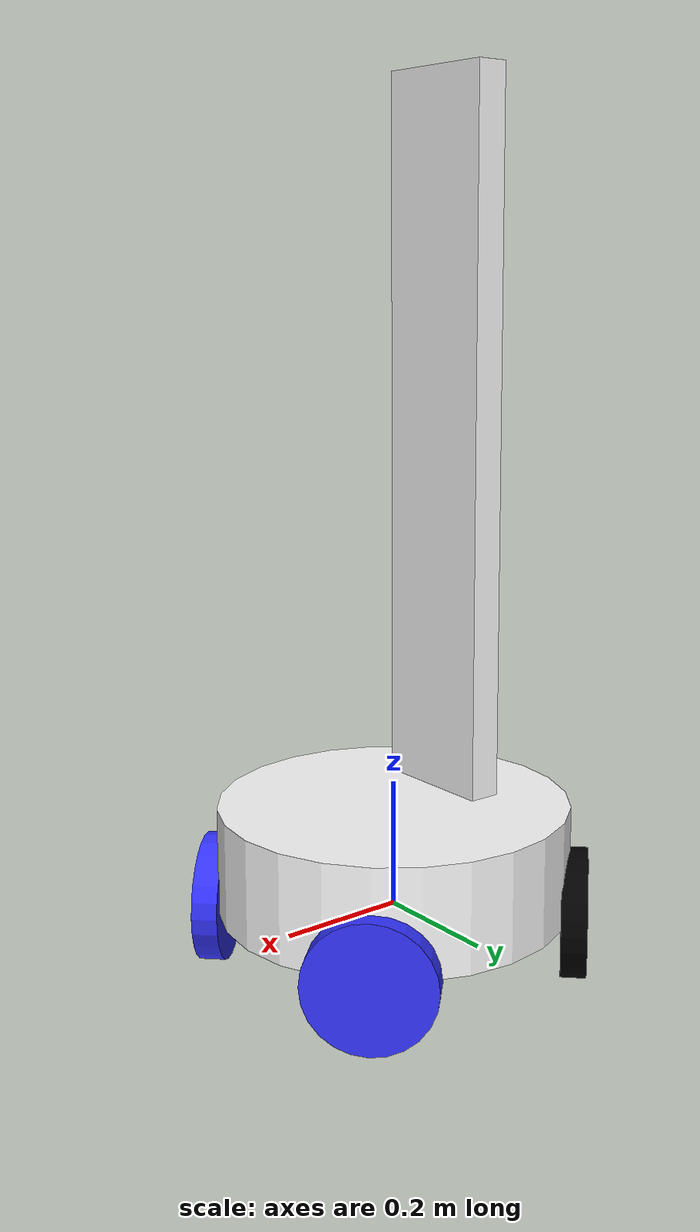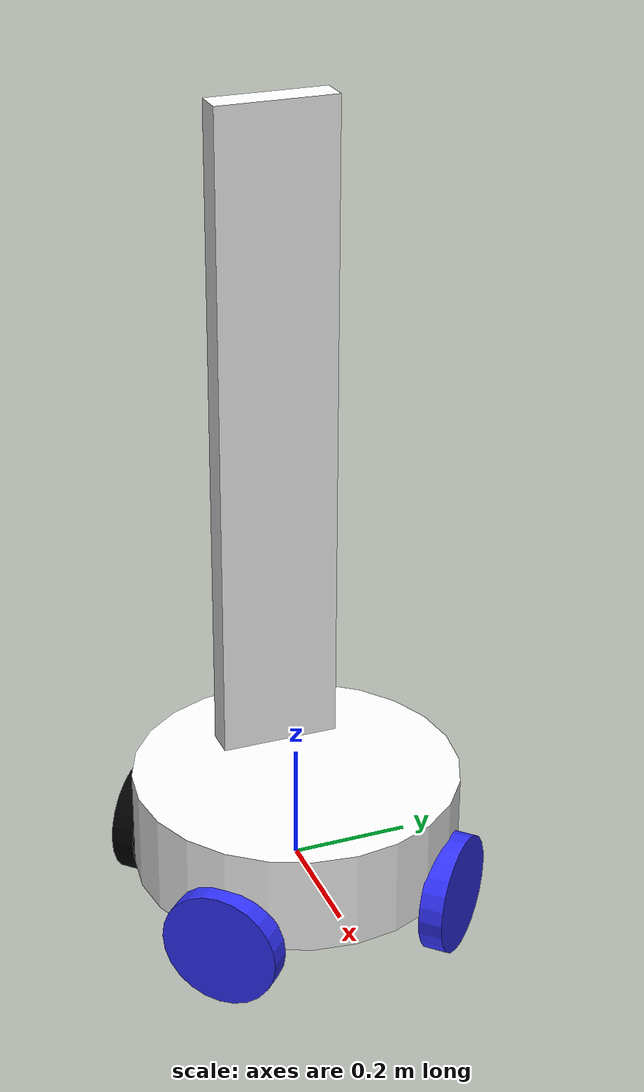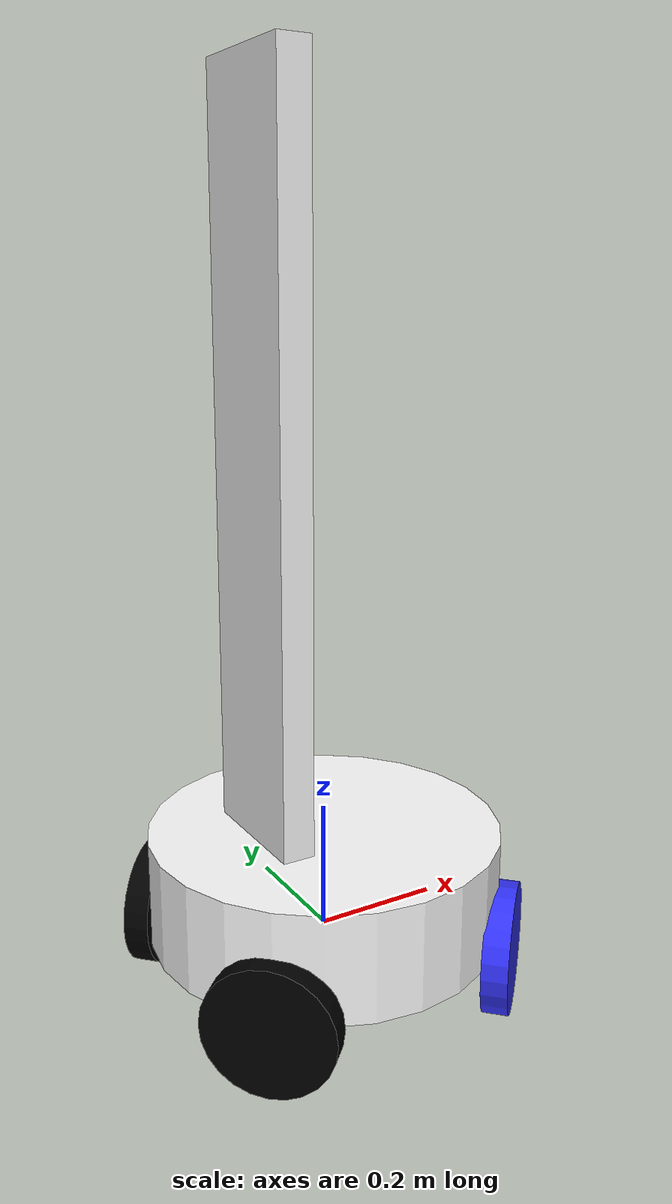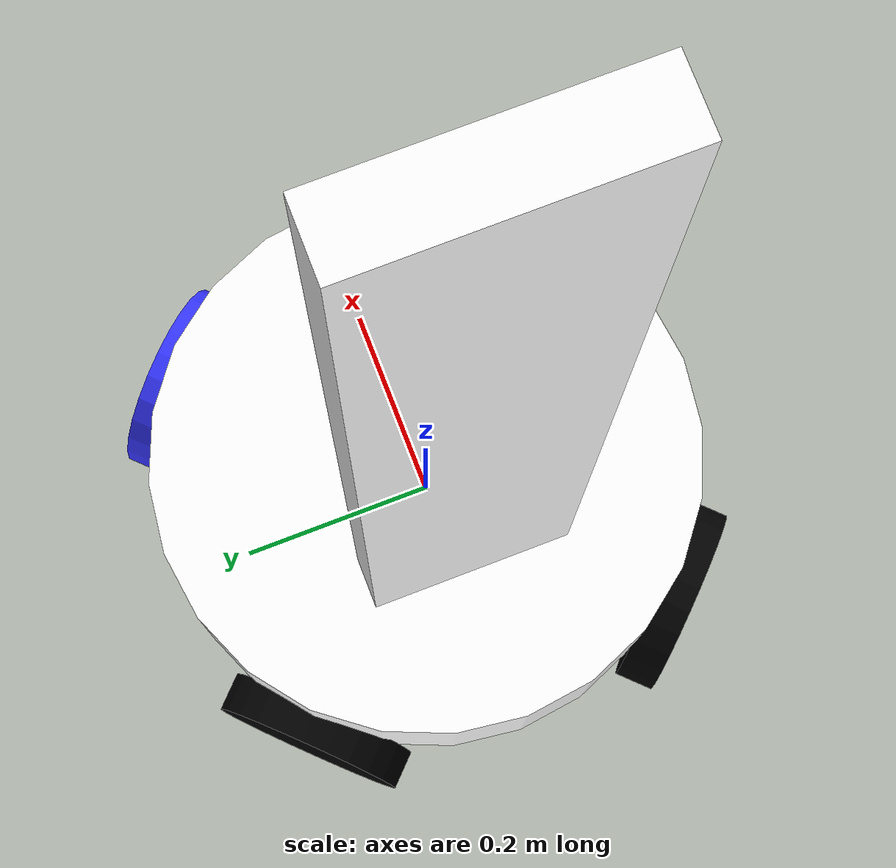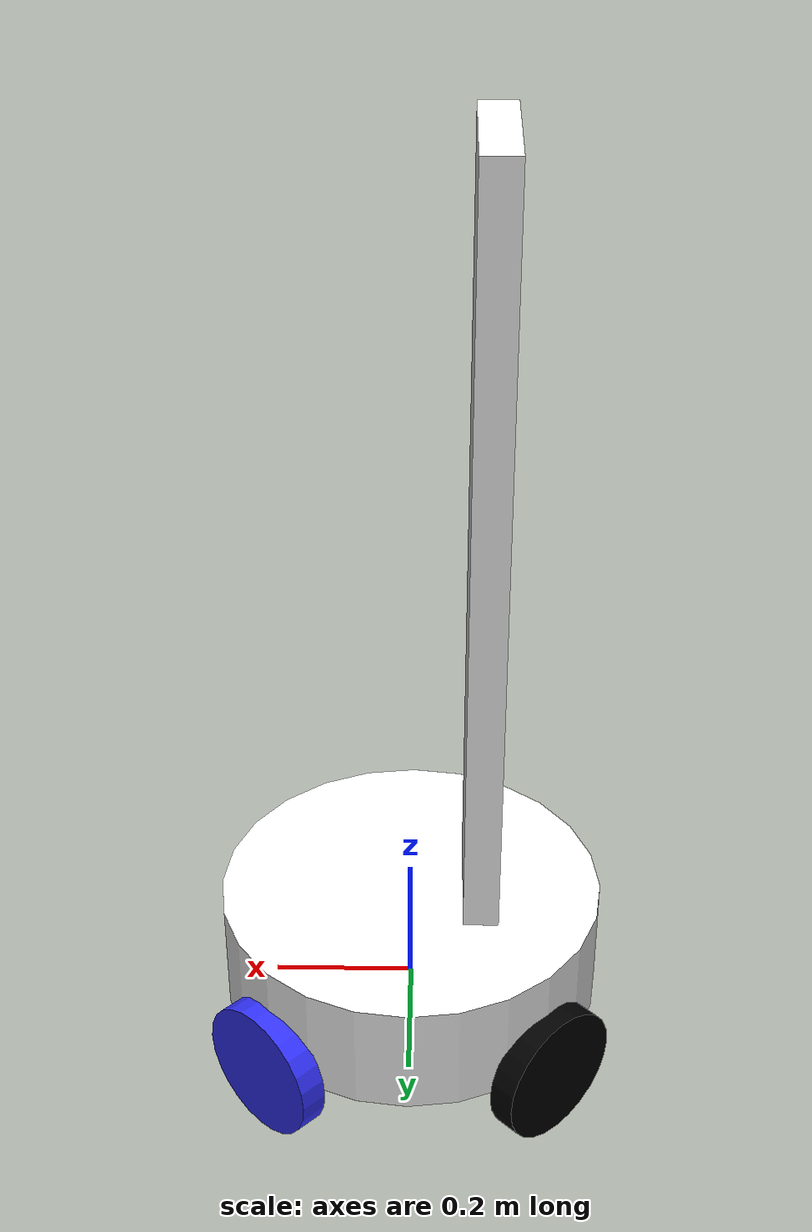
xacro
<?xml version="1.0"?>
<robot xmlns:xacro="http://www.ros.org/wiki/xacro" >

    <xacro:include filename="inertial_macros.xacro"/>
    <xacro:include filename="gazebo_control.xacro" />

    <material name="white">
        <color rgba="1 1 1 1"/>
    </material>
    <material name="blue">
        <color rgba="0.2 0.2 1 1"/>
    </material>
    <material name="black">
        <color rgba="0 0 0 1"/>
    </material>
    <material name="red">
        <color rgba="1 0 0 1"/>
    </material>

    <!--BASE LINK-->
    <link name="base_link">
    </link>

    <!--BASE FOOTPRINT LINK-->
    <joint name="base_footprint_joint" type="fixed">
        <parent link="base_link"/>
        <child link="base_footprint"/>
        <origin xyz="0 0 0" rpy="0 0 0"/>
    </joint>

    <link name="base_footprint">
    </link>

    <!--CHASSI-->
    <joint name="chassi_joint" type="fixed">
        <parent link="base_link"/>
        <child link="chassi_link"/>
        <origin xyz="0 0 0"/> <!--VIRADO PARA X-->
    </joint>

    <link name="chassi_link">
        <visual>
            <origin xyz="0 0 0.085"/>
            <geometry>
                <cylinder radius="0.275" length="0.17"/>
            </geometry>
            <material name="white"/>
        </visual>
        <collision>
            <origin xyz="0 0 0.085"/>
            <geometry>
                <cylinder radius="0.275" length="0.17"/>
            </geometry>
        </collision>
        <xacro:inertial_cylinder mass="0.1" length="0.17" radius="0.275">
            <origin xyz="0 0 0.085" rpy="0 0 0"/>
        </xacro:inertial_cylinder>
    </link>

    <gazebo reference="chassi_link">
        <material>Gazebo/White</material>
    </gazebo>

    <!--BODY-->
    <joint name="body_joint" type="fixed">
        <parent link="chassi_link"/>
        <child link="body_link"/>
        <origin xyz="-0.1 0 0.18" rpy="0 0 0"/>
    </joint>

    <link name="body_link">
        <visual>
            <origin xyz="0 0 0.55" rpy="0 0 ${pi/2}"/>
            <geometry>
                <box size="0.2 0.05 1.1"/>
            </geometry>
            <material name="white"/>
        </visual>
        <collision>
            <origin xyz="0 0 0.55" rpy="0 0 ${pi/2}"/>
            <geometry>
                <box size="0.2 0.05 1.1"/>
            </geometry>
        </collision>
        <xacro:inertial_box mass="0.1" x="0.2" y="0.05" z="1.1">
            <origin xyz="0 0 0.55" rpy="0 0 0"/>
        </xacro:inertial_box>
    </link>

    <gazebo reference="body_link">
        <material>Gazebo/White</material>
    </gazebo>

    <!--WHEELS-->

    <!--LEFT FRONT-->
    <joint name="left_front_joint" type="fixed">
        <parent link="chassi_link"/>
        <child link="left_front_link"/>
        <origin xyz="0.2 0.2 0" rpy="-${pi/2} 0 -${pi/4}"/>
    </joint>

    <link name="left_front_link">
        <visual>
            <geometry>
                <cylinder radius="0.1" length="0.04"/>
            </geometry>
            <material name="blue"/>
        </visual>
        <collision>
            <geometry>
                <cylinder radius="0.1" length="0.04"/>
            </geometry>
        </collision>
        <xacro:inertial_cylinder mass="0.1" length="0.04" radius="0.1">
            <origin xyz="0 0 0" rpy="0 0 0"/>
        </xacro:inertial_cylinder>
    </link>

    <gazebo reference="left_front_link">
        <material>Gazebo/Blue</material>
        <mu1 value="0.001"/>
        <mu2 value="0.001"/>
    </gazebo>

    <!--LEFT BACK-->
    <joint name="left_back_joint" type="fixed">
        <parent link="chassi_link"/>
        <child link="left_back_link"/>
        <origin xyz="-0.2 0.2 0" rpy="0 -${pi/2} -${pi/4}"/>
    </joint>

    <link name="left_back_link">
        <visual>
            <geometry>
                <cylinder radius="0.1" length="0.04"/>
            </geometry>
            <material name="black"/>
        </visual>
        <collision>
            <geometry>
                <cylinder radius="0.1" length="0.04"/>
            </geometry>
        </collision>
        <xacro:inertial_cylinder mass="0.1" length="0.04" radius="0.1">
            <origin xyz="0 0 0" rpy="0 0 0"/>
        </xacro:inertial_cylinder>
    </link>

    <gazebo reference="left_back_link">
        <material>Gazebo/Black</material>
        <mu1 value="0.001"/>
        <mu2 value="0.001"/>
    </gazebo>

    <!--RIGHT FRONT-->
    <joint name="right_front_joint" type="fixed">
        <parent link="chassi_link"/>
        <child link="right_front_link"/>
        <origin xyz="0.2 -0.2 0" rpy="0 ${pi/2} -${pi/4}"/>
    </joint>

    <link name="right_front_link">
        <visual>
            <geometry>
                <cylinder radius="0.1" length="0.04"/>
            </geometry>
            <material name="blue"/>
        </visual>
        <collision>
            <geometry>
                <cylinder radius="0.1" length="0.04"/>
            </geometry>
        </collision>
        <xacro:inertial_cylinder mass="0.1" length="0.04" radius="0.1">
            <origin xyz="0 0 0" rpy="0 0 0"/>
        </xacro:inertial_cylinder>
    </link>

    <gazebo reference="right_front_link">
        <material>Gazebo/Blue</material>
        <mu1 value="0.001"/>
        <mu2 value="0.001"/>
    </gazebo>

    <!--RIGHT BACK-->
    <joint name="right_back_joint" type="fixed">
        <parent link="chassi_link"/>
        <child link="right_back_link"/>
        <origin xyz="-0.2 -0.2 0" rpy="${pi/2} 0 -${pi/4}"/>
    </joint>

    <link name="right_back_link">
        <visual>
            <geometry>
                <cylinder radius="0.1" length="0.04"/>
            </geometry>
            <material name="black"/>
        </visual>
        <collision>
            <geometry>
                <cylinder radius="0.1" length="0.04"/>
            </geometry>
        </collision>
        <xacro:inertial_cylinder mass="0.1" length="0.04" radius="0.1">
            <origin xyz="0 0 0" rpy="0 0 0"/>
        </xacro:inertial_cylinder>
    </link>

    <gazebo reference="right_back_link">
        <material>Gazebo/Black</material>
        <mu1 value="0.001"/>
        <mu2 value="0.001"/>
    </gazebo>

    <xacro:omni_steering/>

</robot>
